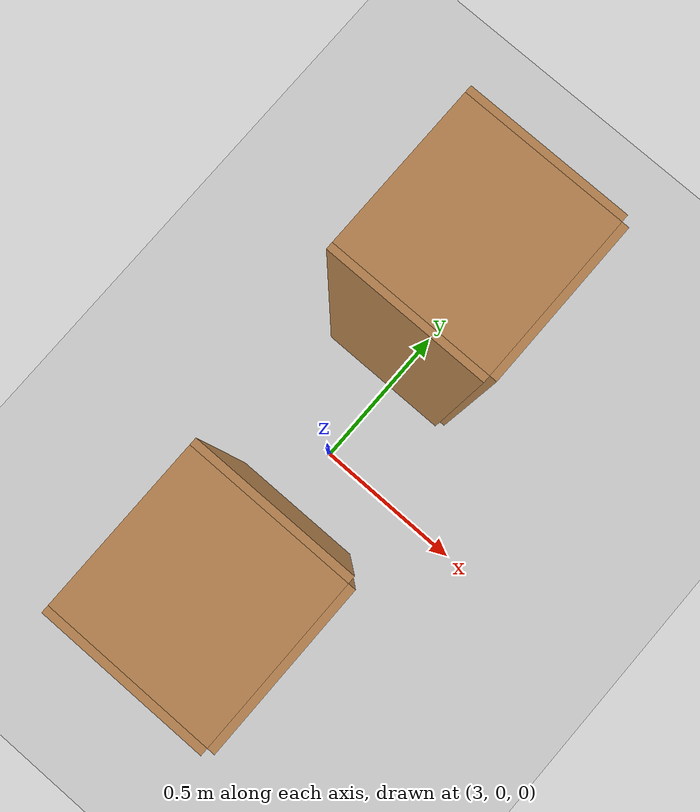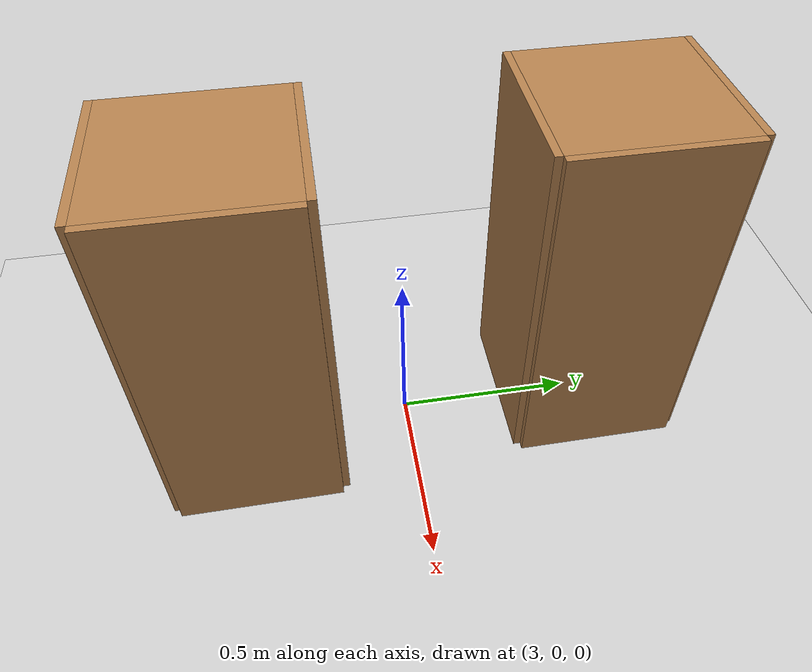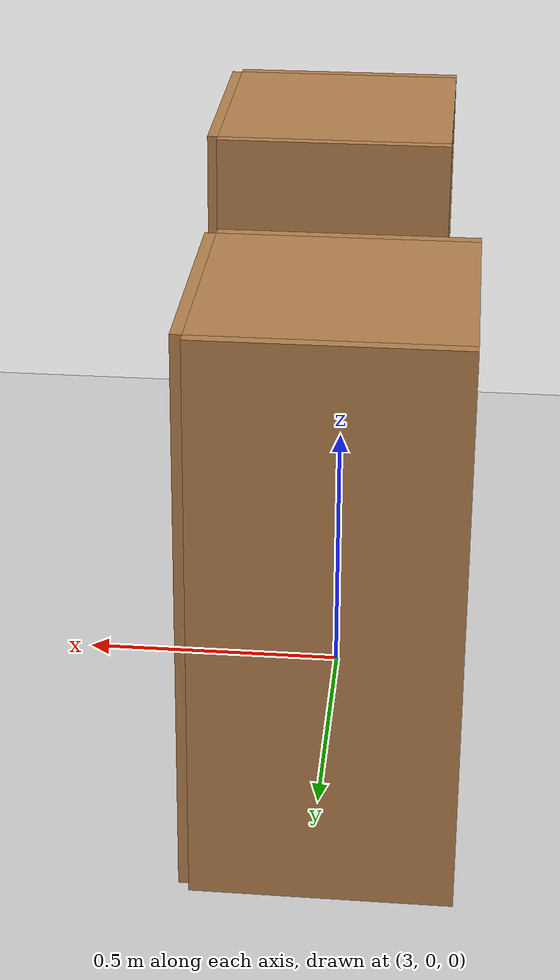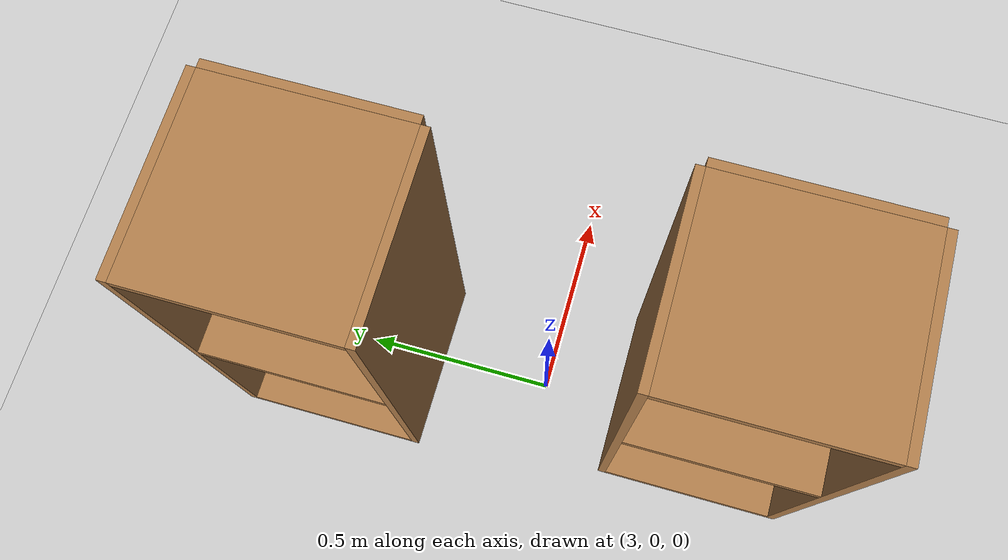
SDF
<sdf version="1.6">
 <world name="default">
  <model name="ground_plane">
   <static>1</static>
   <link name="link">
    <collision name="collision">
     <geometry><plane><normal>0 0 1</normal><size>100 100</size></plane></geometry>
     <surface><friction><ode><mu>100</mu><mu2>50</mu2></ode></friction></surface>
    </collision>
    <visual name="visual">
     <cast_shadows>0</cast_shadows>
     <geometry><plane><normal>0 0 1</normal><size>100 100</size></plane></geometry>
     <material>
      <script><uri>file://media/materials/scripts/gazebo.material</uri><name>Gazebo/Grey</name></script>
     </material>
    </visual>
   </link>
  </model>
  <light name="sun" type="directional">
   <pose>0 0 10 0 -0 0</pose>
   <diffuse>0.8 0.8 0.8 1</diffuse>
   <specular>0.1 0.1 0.1 1</specular>
   <attenuation>
    <range>1000</range>
    <constant>0.9</constant>
    <linear>0.01</linear>
    <quadratic>0.001</quadratic>
   </attenuation>
   <direction>-0.5 0.5 -1</direction>
  </light>
  <model name="cabinet">
   <static>1</static>
   <link name="cabinet_bottom_plate">
    <inertial>
     <pose>0 0 -1 0 -0 0</pose>
     <inertia><ixx>2.05</ixx><ixy>0</ixy><ixz>0</ixz><iyy>2.05</iyy><iyz>0</iyz><izz>2.05</izz></inertia>
     <mass>25</mass>
    </inertial>
    <collision name="cabinet_bottom_plate_geom">
     <pose>0 0 0.01 0 -0 0</pose>
     <geometry><box><size>0.45 0.45 0.02</size></box></geometry>
    </collision>
    <visual name="cabinet_bottom_plate_geom_visual">
     <pose>0 0 0.01 0 -0 0</pose>
     <geometry><box><size>0.45 0.45 0.02</size></box></geometry>
     <material>
      <script><uri>file://media/materials/scripts/gazebo.material</uri><name>Gazebo/Wood</name></script>
     </material>
    </visual>
    <collision name="cabinet_bottom_plate_geom_cabinet_back_plate">
     <pose>0.235 0 0.51 0 -0 0</pose>
     <geometry><box><size>0.02 0.45 1.02</size></box></geometry>
    </collision>
    <visual name="cabinet_bottom_plate_geom_cabinet_back_plate_visual">
     <pose>0.235 0 0.51 0 -0 0</pose>
     <geometry><box><size>0.02 0.45 1.02</size></box></geometry>
     <material>
      <script><uri>file://media/materials/scripts/gazebo.material</uri><name>Gazebo/Wood</name></script>
     </material>
    </visual>
    <collision name="cabinet_bottom_plate_geom_cabinet_left_plate">
     <pose>0 0.235 0.51 0 -0 0</pose>
     <geometry><box><size>0.45 0.02 1.02</size></box></geometry>
    </collision>
    <visual name="cabinet_bottom_plate_geom_cabinet_left_plate_visual">
     <pose>0 0.235 0.51 0 -0 0</pose>
     <geometry><box><size>0.45 0.02 1.02</size></box></geometry>
     <material>
      <script><uri>file://media/materials/scripts/gazebo.material</uri><name>Gazebo/Wood</name></script>
     </material>
    </visual>
    <collision name="cabinet_bottom_plate_geom_cabinet_middle_plate">
     <pose>0 0 0.51 0 -0 0</pose>
     <geometry><box><size>0.45 0.45 0.02</size></box></geometry>
    </collision>
    <visual name="cabinet_bottom_plate_geom_cabinet_middle_plate_visual">
     <pose>0 0 0.51 0 -0 0</pose>
     <geometry><box><size>0.45 0.45 0.02</size></box></geometry>
     <material>
      <script><uri>file://media/materials/scripts/gazebo.material</uri><name>Gazebo/Wood</name></script>
     </material>
    </visual>
    <collision name="cabinet_bottom_plate_geom_cabinet_right_plate">
     <pose>0 -0.235 0.51 0 -0 0</pose>
     <geometry><box><size>0.45 0.02 1.02</size></box></geometry>
    </collision>
    <visual name="cabinet_bottom_plate_geom_cabinet_right_plate_visual">
     <pose>0 -0.235 0.51 0 -0 0</pose>
     <geometry><box><size>0.45 0.02 1.02</size></box></geometry>
     <material>
      <script><uri>file://media/materials/scripts/gazebo.material</uri><name>Gazebo/Wood</name></script>
     </material>
    </visual>
    <collision name="cabinet_bottom_plate_geom_cabinet_top_plate">
     <pose>0 0 1.01 0 -0 0</pose>
     <geometry><box><size>0.45 0.45 0.02</size></box></geometry>
    </collision>
    <visual name="cabinet_bottom_plate_geom_cabinet_top_plate_visual">
     <pose>0 0 1.01 0 -0 0</pose>
     <geometry><box><size>0.45 0.45 0.02</size></box></geometry>
     <material>
      <script><uri>file://media/materials/scripts/gazebo.material</uri><name>Gazebo/Wood</name></script>
     </material>
    </visual>
   </link>
   <pose>2.97525 0.540709 0 0 -0 0</pose>
  </model>
  <plugin name="ros_interface_plugin" filename="librotors_gazebo_ros_interface_plugin.so"/>
  <spherical_coordinates>
   <surface_model>EARTH_WGS84</surface_model>
   <latitude_deg>47.3667</latitude_deg>
   <longitude_deg>8.55</longitude_deg>
   <elevation>500</elevation>
   <heading_deg>0</heading_deg>
  </spherical_coordinates>
  <physics name="default_physics" default="0" type="ode">
   <ode>
    <solver>
     <type>quick</type>
     <iters>1000</iters>
     <sor>1.3</sor>
     <use_dynamic_moi_rescaling>0</use_dynamic_moi_rescaling>
    </solver>
    <constraints>
     <cfm>0</cfm>
     <erp>0.2</erp>
     <contact_max_correcting_vel>100</contact_max_correcting_vel>
     <contact_surface_layer>0.001</contact_surface_layer>
    </constraints>
   </ode>
   <max_step_size>0.01</max_step_size>
   <real_time_factor>1</real_time_factor>
   <real_time_update_rate>100</real_time_update_rate>
  </physics>
  <gravity>0 0 -9.8</gravity>
  <magnetic_field>6e-06 2.3e-05 -4.2e-05</magnetic_field>
  <atmosphere type="adiabatic"/>
  <scene><ambient>0.4 0.4 0.4 1</ambient><background>0.7 0.7 0.7 1</background><shadows>1</shadows></scene>
  <model name="cabinet_0">
   <static>1</static>
   <link name="cabinet_bottom_plate">
    <inertial>
     <pose>0 0 -1 0 -0 0</pose>
     <inertia><ixx>2.05</ixx><ixy>0</ixy><ixz>0</ixz><iyy>2.05</iyy><iyz>0</iyz><izz>2.05</izz></inertia>
     <mass>25</mass>
    </inertial>
    <collision name="cabinet_bottom_plate_geom">
     <pose>0 0 0.01 0 -0 0</pose>
     <geometry><box><size>0.45 0.45 0.02</size></box></geometry>
    </collision>
    <visual name="cabinet_bottom_plate_geom_visual">
     <pose>0 0 0.01 0 -0 0</pose>
     <geometry><box><size>0.45 0.45 0.02</size></box></geometry>
     <material>
      <script><uri>file://media/materials/scripts/gazebo.material</uri><name>Gazebo/Wood</name></script>
     </material>
    </visual>
    <collision name="cabinet_bottom_plate_geom_cabinet_back_plate">
     <pose>0.235 0 0.51 0 -0 0</pose>
     <geometry><box><size>0.02 0.45 1.02</size></box></geometry>
    </collision>
    <visual name="cabinet_bottom_plate_geom_cabinet_back_plate_visual">
     <pose>0.235 0 0.51 0 -0 0</pose>
     <geometry><box><size>0.02 0.45 1.02</size></box></geometry>
     <material>
      <script><uri>file://media/materials/scripts/gazebo.material</uri><name>Gazebo/Wood</name></script>
     </material>
    </visual>
    <collision name="cabinet_bottom_plate_geom_cabinet_left_plate">
     <pose>0 0.235 0.51 0 -0 0</pose>
     <geometry><box><size>0.45 0.02 1.02</size></box></geometry>
    </collision>
    <visual name="cabinet_bottom_plate_geom_cabinet_left_plate_visual">
     <pose>0 0.235 0.51 0 -0 0</pose>
     <geometry><box><size>0.45 0.02 1.02</size></box></geometry>
     <material>
      <script><uri>file://media/materials/scripts/gazebo.material</uri><name>Gazebo/Wood</name></script>
     </material>
    </visual>
    <collision name="cabinet_bottom_plate_geom_cabinet_middle_plate">
     <pose>0 0 0.51 0 -0 0</pose>
     <geometry><box><size>0.45 0.45 0.02</size></box></geometry>
    </collision>
    <visual name="cabinet_bottom_plate_geom_cabinet_middle_plate_visual">
     <pose>0 0 0.51 0 -0 0</pose>
     <geometry><box><size>0.45 0.45 0.02</size></box></geometry>
     <material>
      <script><uri>file://media/materials/scripts/gazebo.material</uri><name>Gazebo/Wood</name></script>
     </material>
    </visual>
    <collision name="cabinet_bottom_plate_geom_cabinet_right_plate">
     <pose>0 -0.235 0.51 0 -0 0</pose>
     <geometry><box><size>0.45 0.02 1.02</size></box></geometry>
    </collision>
    <visual name="cabinet_bottom_plate_geom_cabinet_right_plate_visual">
     <pose>0 -0.235 0.51 0 -0 0</pose>
     <geometry><box><size>0.45 0.02 1.02</size></box></geometry>
     <material>
      <script><uri>file://media/materials/scripts/gazebo.material</uri><name>Gazebo/Wood</name></script>
     </material>
    </visual>
    <collision name="cabinet_bottom_plate_geom_cabinet_top_plate">
     <pose>0 0 1.01 0 -0 0</pose>
     <geometry><box><size>0.45 0.45 0.02</size></box></geometry>
    </collision>
    <visual name="cabinet_bottom_plate_geom_cabinet_top_plate_visual">
     <pose>0 0 1.01 0 -0 0</pose>
     <geometry><box><size>0.45 0.45 0.02</size></box></geometry>
     <material>
      <script><uri>file://media/materials/scripts/gazebo.material</uri><name>Gazebo/Wood</name></script>
     </material>
    </visual>
   </link>
   <pose>3.03507 -0.444101 0 0 -0 0</pose>
  </model>
 </world>
</sdf>
